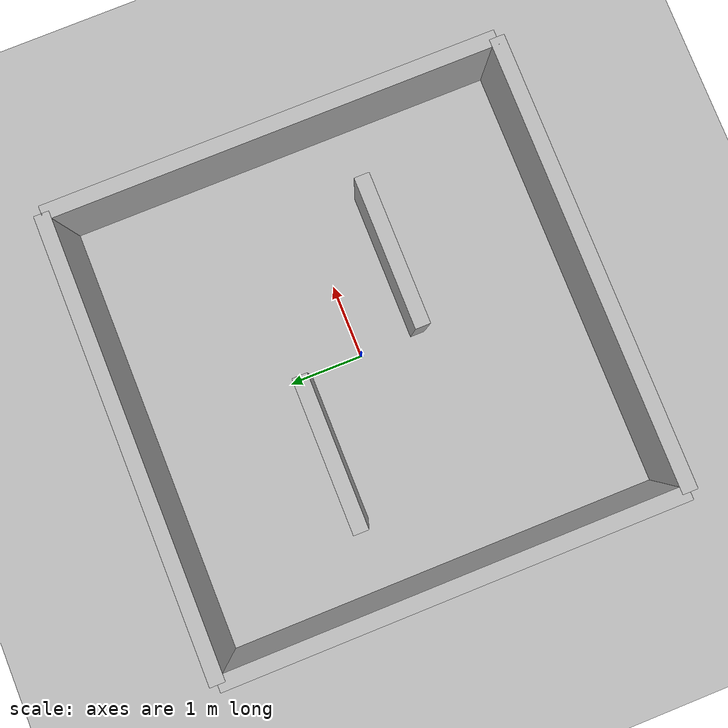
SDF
<?xml version="1.0" ?>
<sdf version="1.6">
  <world name="classroom_world">

    <gravity>0 0 -9.8</gravity> <!-- Gravity force in simulation (Earth-like) -->

    <light name="sun" type="directional">   <!-- Create directional light (sun) -->
          <cast_shadows>true</cast_shadows>   <!-- Enable shadow casting -->
          <pose>0 0 10 0 0 0</pose>           <!-- Position + orientation -->
          <diffuse>0.8 0.8 0.8 1</diffuse>    <!-- Main light color (white light) -->
          <specular>0.2 0.2 0.2 1</specular>  <!-- Reflection intensity (shininess) -->
          <direction>-0.5 0.1 -0.9</direction> <!-- Direction of incoming light -->
    </light>

    <model name="ground">
      <static>true</static> <!-- Ground does not move under physics -->
      <pose>0 0 0 0 0 0</pose> <!-- Position at origin -->
      <link name="ground_link"> <!-- Physical body of ground -->
        <collision name="ground_collision"> <!-- Collision shape (physics) -->
          <geometry>
            <box>
              <size>20 20 0.1</size> <!-- Large flat surface -->
            </box>
          </geometry>
        </collision>
        <visual name="ground_visual"> <!-- Visual representation -->
          <geometry>
            <box>
              <size>20 20 0.1</size> <!-- Same shape as collision -->
            </box>
          </geometry>
        </visual>
      </link>
    </model>

    <!-- Back wall -->
    <model name="back_wall">
      <static>true</static> <!-- Wall is fixed in space -->
      <pose>0 -3 0.5 0 0 0</pose> <!-- Position at back side -->
      <link name="link">
        <collision name="collision"> <!-- Physics collision -->
          <geometry><box><size>6 0.2 1</size></box></geometry> <!-- Thin vertical wall -->
        </collision>
        <visual name="visual"> <!-- Visible wall -->
          <geometry><box><size>6 0.2 1</size></box></geometry>
        </visual>
      </link>
    </model>

    <!-- Front wall -->
    <model name="front_wall">
      <static>true</static>
      <pose>0 3 0.5 0 0 0</pose> <!-- Front boundary -->
      <link name="link">
        <collision name="collision">
          <geometry><box><size>6 0.2 1</size></box></geometry>
        </collision>
        <visual name="visual">
          <geometry><box><size>6 0.2 1</size></box></geometry>
        </visual>
      </link>
    </model>

    <!-- Left wall -->
    <model name="left_wall">
      <static>true</static>
      <pose>-3 0 0.5 0 0 0</pose> <!-- Left boundary -->
      <link name="link">
        <collision name="collision">
          <geometry><box><size>0.2 6 1</size></box></geometry>
        </collision>
        <visual name="visual">
          <geometry><box><size>0.2 6 1</size></box></geometry>
        </visual>
      </link>
    </model>

    <!-- Right wall -->
    <model name="right_wall">
      <static>true</static>
      <pose>3 0 0.5 0 0 0</pose> <!-- Right boundary -->
      <link name="link">
        <collision name="collision">
          <geometry><box><size>0.2 6 1</size></box></geometry>
        </collision>
        <visual name="visual">
          <geometry><box><size>0.2 6 1</size></box></geometry>
        </visual>
      </link>
    </model>

    <!-- Inner obstacle 1 -->
    <model name="inner_wall_1">
      <static>true</static>
      <pose>-1 0.8 0.5 0 0 0</pose> <!-- Internal obstacle position -->
      <link name="link">
        <collision name="collision">
          <geometry><box><size>2.0 0.2 1</size></box></geometry> <!-- Thin barrier -->
        </collision>
        <visual name="visual">
          <geometry><box><size>2.0 0.2 1</size></box></geometry>
        </visual>
      </link>
    </model>

    <!-- Inner obstacle 2 -->
    <model name="inner_wall_2">
      <static>true</static>
      <pose>1 -0.8 0.5 0 0 0</pose> <!-- Second internal obstacle -->
      <link name="link">
        <collision name="collision">
          <geometry><box><size>2.0 0.2 1</size></box></geometry>
        </collision>
        <visual name="visual">
          <geometry><box><size>2.0 0.2 1</size></box></geometry>
        </visual>
      </link>
    </model>

  </world>
</sdf>
